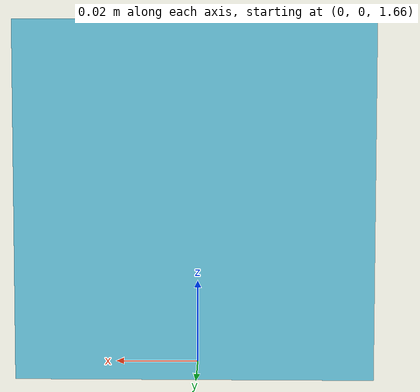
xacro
<?xml version="1.0" ?>
<robot name="BlueCube" xmlns:xacro="http://www.ros.org/wiki/xacro">

<xacro:include filename="$(find cv_ur5_project)/urdf/materials.xacro" />
<xacro:property name="body_color" value="0.419 0.796 0.898" />

<link name="base_link">
  <inertial>
    <origin xyz="0.0 0.0381 5.138960364491298e-18" rpy="0 0 0"/>
    <mass value="3.4732382148"/>
    <inertia ixx="0.003361" iyy="0.003361" izz="0.003361" ixy="-0.0" iyz="-0.0" ixz="-0.0"/>
  </inertial>
  <visual>
    <origin xyz="0 0 1.664629" rpy="1.5708 0 0"/>
    <geometry>
      <mesh filename="package://cv_ur5_project/meshes/cube_link.stl" scale="0.001 0.001 0.001"/>
    </geometry>
    <material name="blue"/>
  </visual>
  <collision>
    <origin xyz="0 0 1.664629" rpy="1.5708 0 0"/>
    <geometry>
      <mesh filename="package://cv_ur5_project/meshes/cube_link.stl" scale="0.001 0.001 0.001"/>
    </geometry>
  </collision>
</link>

<gazebo reference="base_link">
  <material>${body_color}</material>
    <mu1>5</mu1>
    <mu2>5</mu2>
</gazebo>

</robot>

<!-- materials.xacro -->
<robot name="Setup" xmlns:xacro="http://www.ros.org/wiki/xacro" >

<material name="gray">
  <color rgba="0.675 0.675 0.675 1.000"/>
</material>

<material name="off_white">
  <color rgba="0.961 0.961 0.953 1.000"/>
</material>

<material name="green">
  <color rgba="0.537 0.878 0.651 1.000"/>
</material>

<material name="blue">
  <color rgba="0.419 0.796 0.898 1.000"/>
</material>

</robot>
